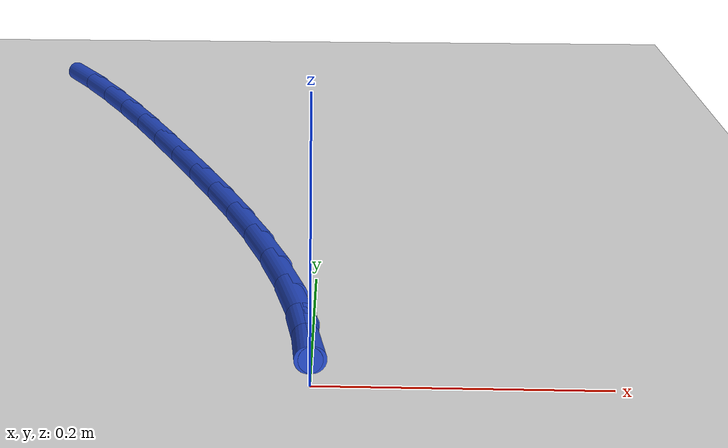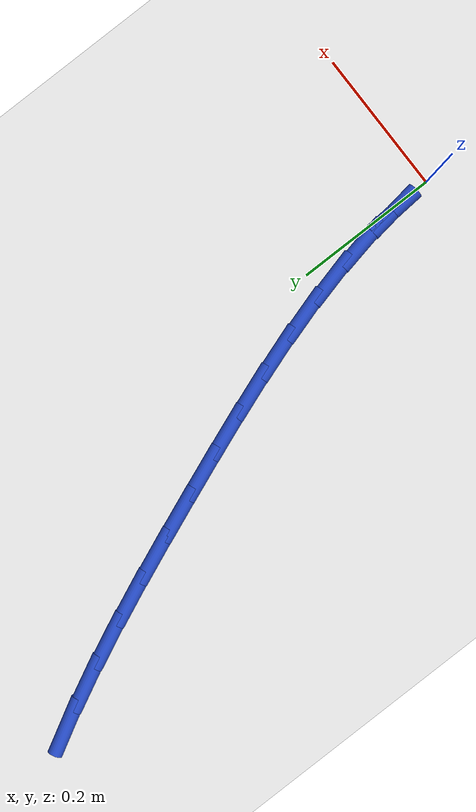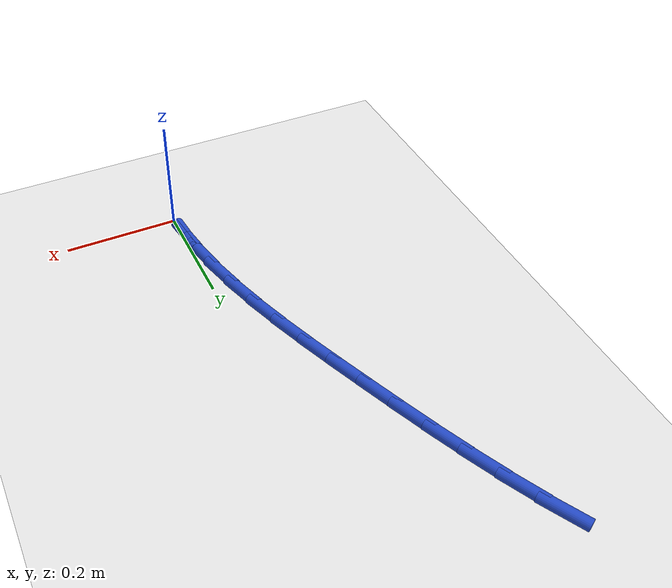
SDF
<sdf version="1.6">
 <world name="default">
  <model name="ground_plane">
   <static>1</static>
   <link name="link">
    <collision name="collision">
     <geometry><plane><normal>0 0 1</normal><size>100 100</size></plane></geometry>
     <surface><friction><ode><mu>100</mu><mu2>50</mu2></ode></friction></surface>
    </collision>
    <visual name="visual">
     <cast_shadows>0</cast_shadows>
     <geometry><plane><normal>0 0 1</normal><size>100 100</size></plane></geometry>
     <material>
      <script><uri>file://media/materials/scripts/gazebo.material</uri><name>Gazebo/WhiteGlow</name></script>
     </material>
    </visual>
   </link>
  </model>
  <model name="line">
   <link name="link_1">
    <pose>-0.004418882780058966 0.05969050560191304 0.01 0 1.57 -1.4291534914358106</pose>
    <collision name="collision">
     <geometry><cylinder><radius>0.01</radius><length>0.08</length></cylinder></geometry>
    </collision>
    <visual name="visual">
     <material>
      <script><name>Gazebo/Blue</name><uri>file://media/materials/scripts/gazebo.material</uri></script>
     </material>
     <geometry><cylinder><radius>0.01</radius><length>0.08</length></cylinder></geometry>
    </visual>
   </link>
   <link name="link_2">
    <pose>-0.012837799349590975 0.1187301248936835 0.01 0 1.57 -1.3694593517988554</pose>
    <collision name="collision">
     <geometry><cylinder><radius>0.01</radius><length>0.08</length></cylinder></geometry>
    </collision>
    <visual name="visual">
     <material>
      <script><name>Gazebo/Blue</name><uri>file://media/materials/scripts/gazebo.material</uri></script>
     </material>
     <geometry><cylinder><radius>0.01</radius><length>0.08</length></cylinder></geometry>
    </visual>
   </link>
   <link name="link_3">
    <pose>-0.024781974374192342 0.17725064845890567 0.01 0 1.57 -1.3183624123060982</pose>
    <collision name="collision">
     <geometry><cylinder><radius>0.01</radius><length>0.08</length></cylinder></geometry>
    </collision>
    <visual name="visual">
     <material>
      <script><name>Gazebo/Blue</name><uri>file://media/materials/scripts/gazebo.material</uri></script>
     </material>
     <geometry><cylinder><radius>0.01</radius><length>0.08</length></cylinder></geometry>
    </visual>
   </link>
   <link name="link_4">
    <pose>-0.039776632519459225 0.2353838668811739 0.01 0 1.57 -1.2760607053887345</pose>
    <collision name="collision">
     <geometry><cylinder><radius>0.01</radius><length>0.08</length></cylinder></geometry>
    </collision>
    <visual name="visual">
     <material>
      <script><name>Gazebo/Blue</name><uri>file://media/materials/scripts/gazebo.material</uri></script>
     </material>
     <geometry><cylinder><radius>0.01</radius><length>0.08</length></cylinder></geometry>
    </visual>
   </link>
   <link name="link_5">
    <pose>-0.05734699845098787 0.2932615707440827 0.01 0 1.57 -1.2425155479199428</pose>
    <collision name="collision">
     <geometry><cylinder><radius>0.01</radius><length>0.08</length></cylinder></geometry>
    </collision>
    <visual name="visual">
     <material>
      <script><name>Gazebo/Blue</name><uri>file://media/materials/scripts/gazebo.material</uri></script>
     </material>
     <geometry><cylinder><radius>0.01</radius><length>0.08</length></cylinder></geometry>
    </visual>
   </link>
   <link name="link_6">
    <pose>-0.07701829683437442 0.3510155506312264 0.01 0 1.57 -1.2175513753918739</pose>
    <collision name="collision">
     <geometry><cylinder><radius>0.01</radius><length>0.08</length></cylinder></geometry>
    </collision>
    <visual name="visual">
     <material>
      <script><name>Gazebo/Blue</name><uri>file://media/materials/scripts/gazebo.material</uri></script>
     </material>
     <geometry><cylinder><radius>0.01</radius><length>0.08</length></cylinder></geometry>
    </visual>
   </link>
   <link name="link_7">
    <pose>-0.09831575233521511 0.4087775971261994 0.01 0 1.57 -1.2009341182106186</pose>
    <collision name="collision">
     <geometry><cylinder><radius>0.01</radius><length>0.08</length></cylinder></geometry>
    </collision>
    <visual name="visual">
     <material>
      <script><name>Gazebo/Blue</name><uri>file://media/materials/scripts/gazebo.material</uri></script>
     </material>
     <geometry><cylinder><radius>0.01</radius><length>0.08</length></cylinder></geometry>
    </visual>
   </link>
   <link name="link_8">
    <pose>-0.1207645896191061 0.466679500812596 0.01 0 1.57 -1.1922491307049974</pose>
    <collision name="collision">
     <geometry><cylinder><radius>0.01</radius><length>0.08</length></cylinder></geometry>
    </collision>
    <visual name="visual">
     <material>
      <script><name>Gazebo/Blue</name><uri>file://media/materials/scripts/gazebo.material</uri></script>
     </material>
     <geometry><cylinder><radius>0.01</radius><length>0.08</length></cylinder></geometry>
    </visual>
   </link>
   <link name="link_9">
    <pose>-0.14389944428302975 0.5248468642495648 0.01 0 1.57 -1.1854342842143797</pose>
    <collision name="collision">
     <geometry><cylinder><radius>0.01</radius><length>0.08</length></cylinder></geometry>
    </collision>
    <visual name="visual">
     <material>
      <script><name>Gazebo/Blue</name><uri>file://media/materials/scripts/gazebo.material</uri></script>
     </material>
     <geometry><cylinder><radius>0.01</radius><length>0.08</length></cylinder></geometry>
    </visual>
   </link>
   <link name="link_10">
    <pose>-0.1675694176701419 0.5831985175053254 0.01 0 1.57 -1.1733223484398745</pose>
    <collision name="collision">
     <geometry><cylinder><radius>0.01</radius><length>0.08</length></cylinder></geometry>
    </collision>
    <visual name="visual">
     <material>
      <script><name>Gazebo/Blue</name><uri>file://media/materials/scripts/gazebo.material</uri></script>
     </material>
     <geometry><cylinder><radius>0.01</radius><length>0.08</length></cylinder></geometry>
    </visual>
   </link>
   <link name="link_11">
    <pose>-0.19200464839301074 0.6414027449963292 0.01 0 1.57 -1.1554029656400915</pose>
    <collision name="collision">
     <geometry><cylinder><radius>0.01</radius><length>0.08</length></cylinder></geometry>
    </collision>
    <visual name="visual">
     <material>
      <script><name>Gazebo/Blue</name><uri>file://media/materials/scripts/gazebo.material</uri></script>
     </material>
     <geometry><cylinder><radius>0.01</radius><length>0.08</length></cylinder></geometry>
    </visual>
   </link>
   <link name="link_12">
    <pose>-0.2174581543851688 0.6991127871660557 0.01 0 1.57 -1.1314883927770056</pose>
    <collision name="collision">
     <geometry><cylinder><radius>0.01</radius><length>0.08</length></cylinder></geometry>
    </collision>
    <visual name="visual">
     <material>
      <script><name>Gazebo/Blue</name><uri>file://media/materials/scripts/gazebo.material</uri></script>
     </material>
     <geometry><cylinder><radius>0.01</radius><length>0.08</length></cylinder></geometry>
    </visual>
   </link>
   <link name="link_13">
    <pose>-0.24418295358014813 0.7559818844579829 0.01 0 1.57 -1.1012980810777626</pose>
    <collision name="collision">
     <geometry><cylinder><radius>0.01</radius><length>0.08</length></cylinder></geometry>
    </collision>
    <visual name="visual">
     <material>
      <script><name>Gazebo/Blue</name><uri>file://media/materials/scripts/gazebo.material</uri></script>
     </material>
     <geometry><cylinder><radius>0.01</radius><length>0.08</length></cylinder></geometry>
    </visual>
   </link>
   <link name="link_14">
    <pose>-0.2724320639114814 0.8116632773155904 0.01 0 1.57 -1.0644769989211642</pose>
    <collision name="collision">
     <geometry><cylinder><radius>0.01</radius><length>0.08</length></cylinder></geometry>
    </collision>
    <visual name="visual">
     <material>
      <script><name>Gazebo/Blue</name><uri>file://media/materials/scripts/gazebo.material</uri></script>
     </material>
     <geometry><cylinder><radius>0.01</radius><length>0.08</length></cylinder></geometry>
    </visual>
   </link>
   <link name="link_121">
    <pose>-0.004515632111797063 0.05959921529421167 0.01 0 1.57 -1.495174174010796</pose>
    <collision name="collision">
     <geometry><cylinder><radius>0.01</radius><length>0.08</length></cylinder></geometry>
    </collision>
    <visual name="visual">
     <material>
      <script><name>Gazebo/Blue</name><uri>file://media/materials/scripts/gazebo.material</uri></script>
     </material>
     <geometry><cylinder><radius>0.01</radius><length>0.08</length></cylinder></geometry>
    </visual>
   </link>
  </model>
 </world>
</sdf>
